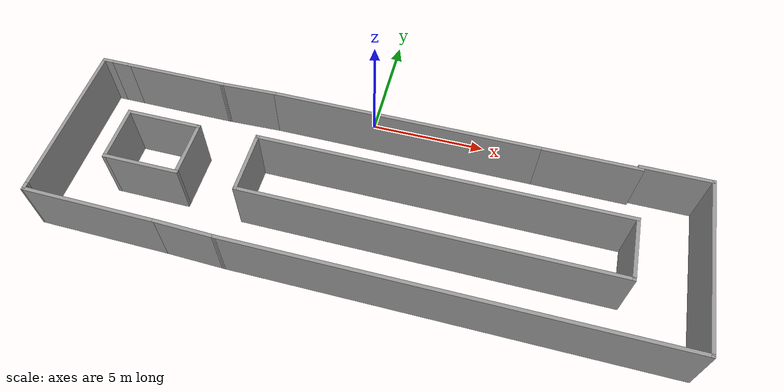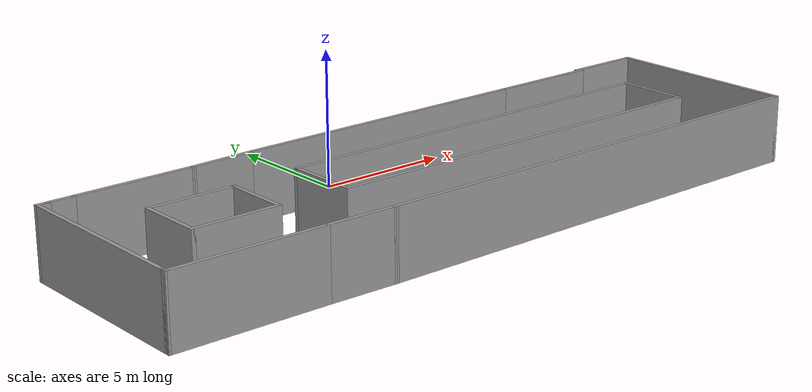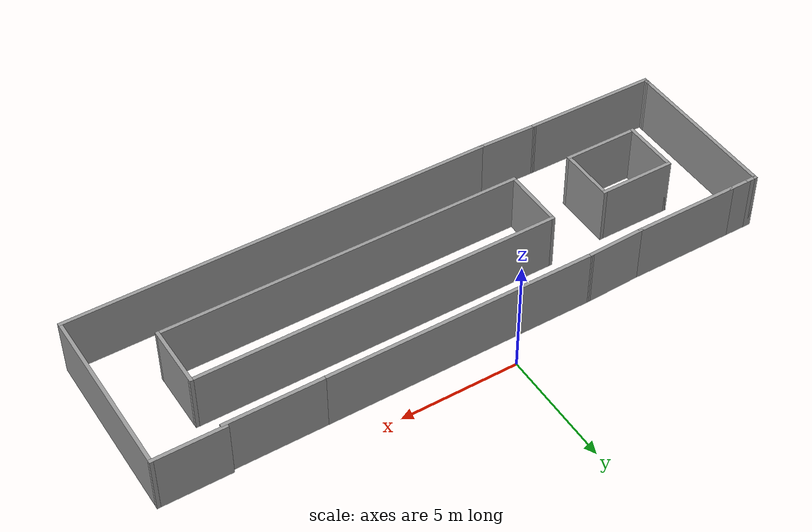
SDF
<?xml version='1.0'?>
<sdf version='1.6'>
  <model name='tukl'>
    <pose frame=''>1.04636 -4.80544 0 0 -0 0</pose>
    <link name='Wall_0'>
      <collision name='Wall_0_Collision'>
        <geometry>
          <box>
            <size>11.5 0.15 2.5</size>
          </box>
        </geometry>
        <pose frame=''>0 0 1.25 0 -0 0</pose>
      </collision>
      <visual name='Wall_0_Visual'>
        <pose frame=''>0 0 1.25 0 -0 0</pose>
        <geometry>
          <box>
            <size>11.5 0.15 2.5</size>
          </box>
        </geometry>
        <material>
          <script>
            <uri>file://media/materials/scripts/gazebo.material</uri>
            <name>Gazebo/Grey</name>
          </script>
          <ambient>1 1 1 1</ambient>
        </material>
        <meta>
          <layer>0</layer>
        </meta>
      </visual>
      <pose frame=''>0.518638 3.56543 0 0 -0 0</pose>
    </link>
    <link name='Wall_1'>
      <collision name='Wall_1_Collision'>
        <geometry>
          <box>
            <size>4.25 0.15 2.5</size>
          </box>
        </geometry>
        <pose frame=''>0 0 1.25 0 -0 0</pose>
      </collision>
      <visual name='Wall_1_Visual'>
        <pose frame=''>0 0 1.25 0 -0 0</pose>
        <geometry>
          <box>
            <size>4.25 0.15 2.5</size>
          </box>
        </geometry>
        <material>
          <script>
            <uri>file://media/materials/scripts/gazebo.material</uri>
            <name>Gazebo/Grey</name>
          </script>
          <ambient>1 1 1 1</ambient>
        </material>
        <meta>
          <layer>0</layer>
        </meta>
      </visual>
      <pose frame=''>8.24364 3.56543 0 0 -0 0</pose>
    </link>
    <link name='Wall_11'>
      <collision name='Wall_11_Collision'>
        <geometry>
          <box>
            <size>18.25 0.15 2.5</size>
          </box>
        </geometry>
        <pose frame=''>0 0 1.25 0 -0 0</pose>
      </collision>
      <visual name='Wall_11_Visual'>
        <pose frame=''>0 0 1.25 0 -0 0</pose>
        <geometry>
          <box>
            <size>18.25 0.15 2.5</size>
          </box>
        </geometry>
        <material>
          <script>
            <uri>file://media/materials/scripts/gazebo.material</uri>
            <name>Gazebo/Grey</name>
          </script>
          <ambient>1 1 1 1</ambient>
        </material>
        <meta>
          <layer>0</layer>
        </meta>
      </visual>
      <pose frame=''>4.00226 -3.67409 0 0 -0 0</pose>
    </link>
    <link name='Wall_12'>
      <collision name='Wall_12_Collision'>
        <geometry>
          <box>
            <size>7.5 0.15 2.5</size>
          </box>
        </geometry>
        <pose frame=''>0 0 1.25 0 -0 0</pose>
      </collision>
      <visual name='Wall_12_Visual'>
        <pose frame=''>0 0 1.25 0 -0 0</pose>
        <geometry>
          <box>
            <size>7.5 0.15 2.5</size>
          </box>
        </geometry>
        <material>
          <script>
            <uri>file://media/materials/scripts/gazebo.material</uri>
            <name>Gazebo/Grey</name>
          </script>
          <ambient>1 1 1 1</ambient>
        </material>
        <meta>
          <layer>0</layer>
        </meta>
      </visual>
      <pose frame=''>13.0523 0.000912 0 0 -0 1.5708</pose>
    </link>
    <link name='Wall_13'>
      <collision name='Wall_13_Collision'>
        <geometry>
          <box>
            <size>3 0.15 2.5</size>
          </box>
        </geometry>
        <pose frame=''>0 0 1.25 0 -0 0</pose>
      </collision>
      <visual name='Wall_13_Visual'>
        <pose frame=''>0 0 1.25 0 -0 0</pose>
        <geometry>
          <box>
            <size>3 0.15 2.5</size>
          </box>
        </geometry>
        <material>
          <script>
            <uri>file://media/materials/scripts/gazebo.material</uri>
            <name>Gazebo/Grey</name>
          </script>
          <ambient>1 1 1 1</ambient>
        </material>
        <meta>
          <layer>0</layer>
        </meta>
      </visual>
      <pose frame=''>11.6273 3.67591 0 0 -0 3.14159</pose>
    </link>
    <link name='Wall_16'>
      <collision name='Wall_16_Collision'>
        <geometry>
          <box>
            <size>2.6046 0.15 2.5</size>
          </box>
        </geometry>
        <pose frame=''>0 0 1.25 0 -0 0</pose>
      </collision>
      <visual name='Wall_16_Visual'>
        <pose frame=''>0 0 1.25 0 -0 0</pose>
        <geometry>
          <box>
            <size>2.6046 0.15 2.5</size>
          </box>
        </geometry>
        <material>
          <script>
            <uri>file://media/materials/scripts/gazebo.material</uri>
            <name>Gazebo/Grey</name>
          </script>
          <ambient>1 1 1 1</ambient>
        </material>
        <meta>
          <layer>0</layer>
        </meta>
      </visual>
      <pose frame=''>-6.27466 -3.64387 0 0 -0 -0.024622</pose>
    </link>
    <link name='Wall_18'>
      <collision name='Wall_18_Collision'>
        <geometry>
          <box>
            <size>2.49656 0.15 2.5</size>
          </box>
        </geometry>
        <pose frame=''>0 0 1.25 0 -0 0</pose>
      </collision>
      <visual name='Wall_18_Visual'>
        <pose frame=''>0 0 1.25 0 -0 0</pose>
        <geometry>
          <box>
            <size>2.49656 0.15 2.5</size>
          </box>
        </geometry>
        <material>
          <script>
            <uri>file://media/materials/scripts/gazebo.material</uri>
            <name>Gazebo/Grey</name>
          </script>
          <ambient>1 1 1 1</ambient>
        </material>
        <meta>
          <layer>0</layer>
        </meta>
      </visual>
      <pose frame=''>-6.32898 3.52589 0 0 -0 -3.10788</pose>
    </link>
    <link name='Wall_20'>
      <collision name='Wall_20_Collision'>
        <geometry>
          <box>
            <size>2.5 0.15 2.5</size>
          </box>
        </geometry>
        <pose frame=''>0 0 1.25 0 -0 0</pose>
      </collision>
      <visual name='Wall_20_Visual'>
        <pose frame=''>0 0 1.25 0 -0 0</pose>
        <geometry>
          <box>
            <size>2.5 0.15 2.5</size>
          </box>
        </geometry>
        <material>
          <script>
            <uri>file://media/materials/scripts/gazebo.material</uri>
            <name>Gazebo/Grey</name>
          </script>
          <ambient>1 1 1 1</ambient>
        </material>
        <meta>
          <layer>0</layer>
        </meta>
      </visual>
      <pose frame=''>-7.60216 -0.122399 0 0 -0 -1.5708</pose>
    </link>
    <link name='Wall_21'>
      <collision name='Wall_21_Collision'>
        <geometry>
          <box>
            <size>3.25 0.15 2.5</size>
          </box>
        </geometry>
        <pose frame=''>0 0 1.25 0 -0 0</pose>
      </collision>
      <visual name='Wall_21_Visual'>
        <pose frame=''>0 0 1.25 0 -0 0</pose>
        <geometry>
          <box>
            <size>3.25 0.15 2.5</size>
          </box>
        </geometry>
        <material>
          <script>
            <uri>file://media/materials/scripts/gazebo.material</uri>
            <name>Gazebo/Grey</name>
          </script>
          <ambient>1 1 1 1</ambient>
        </material>
        <meta>
          <layer>0</layer>
        </meta>
      </visual>
      <pose frame=''>-9.15216 -1.2974 0 0 -0 3.14159</pose>
    </link>
    <link name='Wall_22'>
      <collision name='Wall_22_Collision'>
        <geometry>
          <box>
            <size>2.5 0.15 2.5</size>
          </box>
        </geometry>
        <pose frame=''>0 0 1.25 0 -0 0</pose>
      </collision>
      <visual name='Wall_22_Visual'>
        <pose frame=''>0 0 1.25 0 -0 0</pose>
        <geometry>
          <box>
            <size>2.5 0.15 2.5</size>
          </box>
        </geometry>
        <material>
          <script>
            <uri>file://media/materials/scripts/gazebo.material</uri>
            <name>Gazebo/Grey</name>
          </script>
          <ambient>1 1 1 1</ambient>
        </material>
        <meta>
          <layer>0</layer>
        </meta>
      </visual>
      <pose frame=''>-10.7022 -0.122399 0 0 -0 1.5708</pose>
    </link>
    <link name='Wall_23'>
      <collision name='Wall_23_Collision'>
        <geometry>
          <box>
            <size>3.25 0.15 2.5</size>
          </box>
        </geometry>
        <pose frame=''>0 0 1.25 0 -0 0</pose>
      </collision>
      <visual name='Wall_23_Visual'>
        <pose frame=''>0 0 1.25 0 -0 0</pose>
        <geometry>
          <box>
            <size>3.25 0.15 2.5</size>
          </box>
        </geometry>
        <material>
          <script>
            <uri>file://media/materials/scripts/gazebo.material</uri>
            <name>Gazebo/Grey</name>
          </script>
          <ambient>1 1 1 1</ambient>
        </material>
        <meta>
          <layer>0</layer>
        </meta>
      </visual>
      <pose frame=''>-9.15216 1.0526 0 0 -0 0</pose>
    </link>
    <link name='Wall_25'>
      <collision name='Wall_25_Collision'>
        <geometry>
          <box>
            <size>4.5 0.15 2.5</size>
          </box>
        </geometry>
        <pose frame=''>0 0 1.25 0 -0 0</pose>
      </collision>
      <visual name='Wall_25_Visual'>
        <pose frame=''>0 0 1.25 0 -0 0</pose>
        <geometry>
          <box>
            <size>4.5 0.15 2.5</size>
          </box>
        </geometry>
        <material>
          <script>
            <uri>file://media/materials/scripts/gazebo.material</uri>
            <name>Gazebo/Grey</name>
          </script>
          <ambient>1 1 1 1</ambient>
        </material>
        <meta>
          <layer>0</layer>
        </meta>
      </visual>
      <pose frame=''>-9.67659 3.48634 0 0 -0 3.14159</pose>
    </link>
    <link name='Wall_26'>
      <collision name='Wall_26_Collision'>
        <geometry>
          <box>
            <size>1 0.15 2.5</size>
          </box>
        </geometry>
        <pose frame=''>0 0 1.25 0 -0 0</pose>
      </collision>
      <visual name='Wall_26_Visual'>
        <pose frame=''>0 0 1.25 0 -0 0</pose>
        <geometry>
          <box>
            <size>1 0.15 2.5</size>
          </box>
        </geometry>
        <material>
          <script>
            <uri>file://media/materials/scripts/gazebo.material</uri>
            <name>Gazebo/Grey</name>
          </script>
          <ambient>1 1 1 1</ambient>
        </material>
        <meta>
          <layer>0</layer>
        </meta>
      </visual>
      <pose frame=''>-12.2766 3.48634 0 0 -0 3.14159</pose>
    </link>
    <link name='Wall_27'>
      <collision name='Wall_27_Collision'>
        <geometry>
          <box>
            <size>0.5 0.15 2.5</size>
          </box>
        </geometry>
        <pose frame=''>0 0 1.25 0 -0 0</pose>
      </collision>
      <visual name='Wall_27_Visual'>
        <pose frame=''>0 0 1.25 0 -0 0</pose>
        <geometry>
          <box>
            <size>0.5 0.15 2.5</size>
          </box>
        </geometry>
        <material>
          <script>
            <uri>file://media/materials/scripts/gazebo.material</uri>
            <name>Gazebo/Grey</name>
          </script>
          <ambient>1 1 1 1</ambient>
        </material>
        <meta>
          <layer>0</layer>
        </meta>
      </visual>
      <pose frame=''>-12.8766 3.48634 0 0 -0 3.14159</pose>
    </link>
    <link name='Wall_28'>
      <collision name='Wall_28_Collision'>
        <geometry>
          <box>
            <size>7 0.15 2.5</size>
          </box>
        </geometry>
        <pose frame=''>0 0 1.25 0 -0 0</pose>
      </collision>
      <visual name='Wall_28_Visual'>
        <pose frame=''>0 0 1.25 0 -0 0</pose>
        <geometry>
          <box>
            <size>7 0.15 2.5</size>
          </box>
        </geometry>
        <material>
          <script>
            <uri>file://media/materials/scripts/gazebo.material</uri>
            <name>Gazebo/Grey</name>
          </script>
          <ambient>1 1 1 1</ambient>
        </material>
        <meta>
          <layer>0</layer>
        </meta>
      </visual>
      <pose frame=''>-13.0516 0.061343 0 0 -0 -1.5708</pose>
    </link>
    <link name='Wall_29'>
      <collision name='Wall_29_Collision'>
        <geometry>
          <box>
            <size>0.25 0.15 2.5</size>
          </box>
        </geometry>
        <pose frame=''>0 0 1.25 0 -0 0</pose>
      </collision>
      <visual name='Wall_29_Visual'>
        <pose frame=''>0 0 1.25 0 -0 0</pose>
        <geometry>
          <box>
            <size>0.25 0.15 2.5</size>
          </box>
        </geometry>
        <material>
          <script>
            <uri>file://media/materials/scripts/gazebo.material</uri>
            <name>Gazebo/Grey</name>
          </script>
          <ambient>1 1 1 1</ambient>
        </material>
        <meta>
          <layer>0</layer>
        </meta>
      </visual>
      <pose frame=''>-13.0516 -3.41366 0 0 -0 -1.5708</pose>
    </link>
    <link name='Wall_30'>
      <collision name='Wall_30_Collision'>
        <geometry>
          <box>
            <size>0.25 0.15 2.5</size>
          </box>
        </geometry>
        <pose frame=''>0 0 1.25 0 -0 0</pose>
      </collision>
      <visual name='Wall_30_Visual'>
        <pose frame=''>0 0 1.25 0 -0 0</pose>
        <geometry>
          <box>
            <size>0.25 0.15 2.5</size>
          </box>
        </geometry>
        <material>
          <script>
            <uri>file://media/materials/scripts/gazebo.material</uri>
            <name>Gazebo/Grey</name>
          </script>
          <ambient>1 1 1 1</ambient>
        </material>
        <meta>
          <layer>0</layer>
        </meta>
      </visual>
      <pose frame=''>-13.0516 -3.51366 0 0 -0 -1.5708</pose>
    </link>
    <link name='Wall_31'>
      <collision name='Wall_31_Collision'>
        <geometry>
          <box>
            <size>5.70022 0.15 2.5</size>
          </box>
        </geometry>
        <pose frame=''>0 0 1.25 0 -0 0</pose>
      </collision>
      <visual name='Wall_31_Visual'>
        <pose frame=''>0 0 1.25 0 -0 0</pose>
        <geometry>
          <box>
            <size>5.70022 0.15 2.5</size>
          </box>
        </geometry>
        <material>
          <script>
            <uri>file://media/materials/scripts/gazebo.material</uri>
            <name>Gazebo/Grey</name>
          </script>
          <ambient>1 1 1 1</ambient>
        </material>
        <meta>
          <layer>0</layer>
        </meta>
      </visual>
      <pose frame=''>-10.2766 -3.58866 0 0 -0 -0.009009</pose>
    </link>
    <link name='Wall_5'>
      <collision name='Wall_5_Collision'>
        <geometry>
          <box>
            <size>15.5 0.15 2.5</size>
          </box>
        </geometry>
        <pose frame=''>0 0 1.25 0 -0 0</pose>
      </collision>
      <visual name='Wall_5_Visual'>
        <pose frame=''>0 0 1.25 0 -0 0</pose>
        <geometry>
          <box>
            <size>15.5 0.15 2.5</size>
          </box>
        </geometry>
        <material>
          <script>
            <uri>file://media/materials/scripts/gazebo.material</uri>
            <name>Gazebo/Grey</name>
          </script>
          <ambient>1 1 1 1</ambient>
        </material>
        <meta>
          <layer>0</layer>
        </meta>
      </visual>
      <pose frame=''>2.60715 1.17328 0 0 -0 0</pose>
    </link>
    <link name='Wall_7'>
      <collision name='Wall_7_Collision'>
        <geometry>
          <box>
            <size>2.75 0.15 2.5</size>
          </box>
        </geometry>
        <pose frame=''>0 0 1.25 0 -0 0</pose>
      </collision>
      <visual name='Wall_7_Visual'>
        <pose frame=''>0 0 1.25 0 -0 0</pose>
        <geometry>
          <box>
            <size>2.75 0.15 2.5</size>
          </box>
        </geometry>
        <material>
          <script>
            <uri>file://media/materials/scripts/gazebo.material</uri>
            <name>Gazebo/Grey</name>
          </script>
          <ambient>1 1 1 1</ambient>
        </material>
        <meta>
          <layer>0</layer>
        </meta>
      </visual>
      <pose frame=''>-5.06785 -0.126718 0 0 -0 -1.5708</pose>
    </link>
    <link name='Wall_8'>
      <collision name='Wall_8_Collision'>
        <geometry>
          <box>
            <size>15.5 0.15 2.5</size>
          </box>
        </geometry>
        <pose frame=''>0 0 1.25 0 -0 0</pose>
      </collision>
      <visual name='Wall_8_Visual'>
        <pose frame=''>0 0 1.25 0 -0 0</pose>
        <geometry>
          <box>
            <size>15.5 0.15 2.5</size>
          </box>
        </geometry>
        <material>
          <script>
            <uri>file://media/materials/scripts/gazebo.material</uri>
            <name>Gazebo/Grey</name>
          </script>
          <ambient>1 1 1 1</ambient>
        </material>
        <meta>
          <layer>0</layer>
        </meta>
      </visual>
      <pose frame=''>2.60715 -1.42672 0 0 -0 0</pose>
    </link>
    <link name='Wall_9'>
      <collision name='Wall_9_Collision'>
        <geometry>
          <box>
            <size>2.75 0.15 2.5</size>
          </box>
        </geometry>
        <pose frame=''>0 0 1.25 0 -0 0</pose>
      </collision>
      <visual name='Wall_9_Visual'>
        <pose frame=''>0 0 1.25 0 -0 0</pose>
        <geometry>
          <box>
            <size>2.75 0.15 2.5</size>
          </box>
        </geometry>
        <material>
          <script>
            <uri>file://media/materials/scripts/gazebo.material</uri>
            <name>Gazebo/Grey</name>
          </script>
          <ambient>1 1 1 1</ambient>
        </material>
        <meta>
          <layer>0</layer>
        </meta>
      </visual>
      <pose frame=''>10.2821 -0.126718 0 0 -0 1.5708</pose>
    </link>
    <static>1</static>
  </model>
</sdf>
